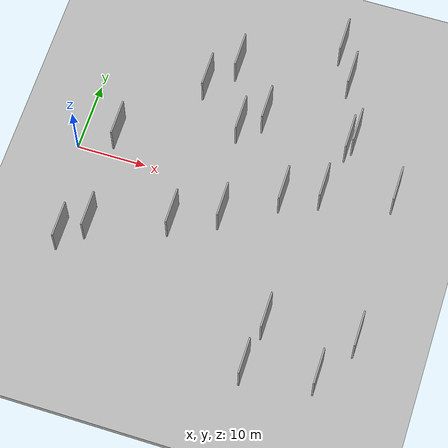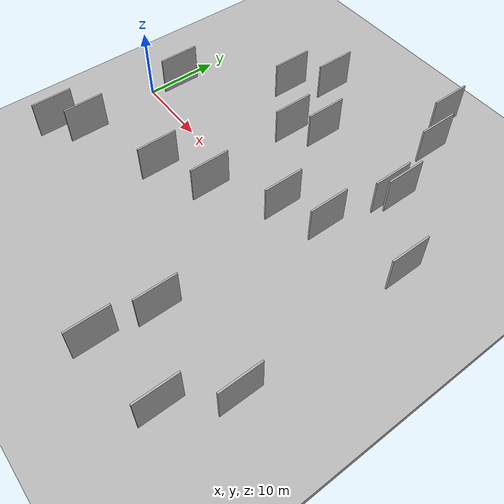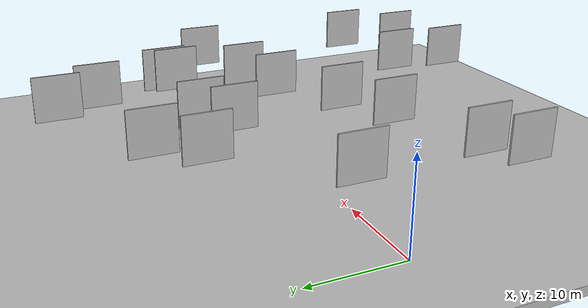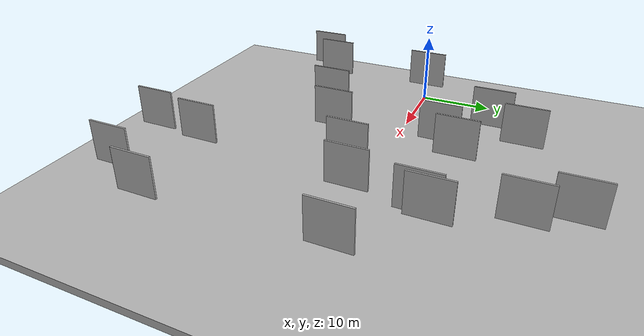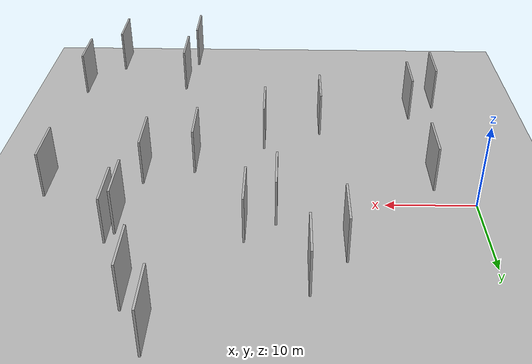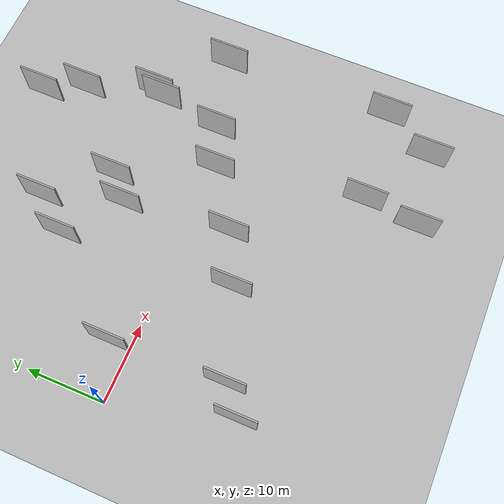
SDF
<?xml version="1.0" encoding="utf-8"?>

<sdf version="1.6">

   <world name="default">

      <gui fullscreen="0">

         <camera name="user_camera">

            <pose>-15 0 4.57585 0 0 0</pose>

            <view_controller>orbit</view_controller>

         </camera>

      </gui>

      <scene>

         <sky>

           <clouds>

             <speed>12</speed>

           </clouds>

         </sky>

         <ambient>0.4 0.4 0.4 1</ambient>

         <background>0.7 0.7 0.7 1</background>

         <shadows>1</shadows>

      </scene>

      <gravity>0 0 -9.8066</gravity>

      <magnetic_field>6e-06 2.3e-05 -4.2e-05</magnetic_field>

      <physics default="0" name="default_physics" type="ode">

         <ode>

            <solver>

               <type>quick</type>

               <iters>10</iters>

               <sor>1.0</sor>

               <use_dynamic_moi_rescaling>0</use_dynamic_moi_rescaling>

            </solver>

            <constraints>

               <cfm>0</cfm>

               <erp>0.2</erp>

               <contact_max_correcting_vel>100</contact_max_correcting_vel>

               <contact_surface_layer>0.001</contact_surface_layer>

            </constraints>

         </ode>

         <max_step_size>0.004</max_step_size>

         <real_time_factor>1</real_time_factor>

         <real_time_update_rate>250</real_time_update_rate>

      </physics>

      <light name="sun" type="directional">

         <cast_shadows>1</cast_shadows>

         <pose>0 0 10 0 0 0</pose>

         <diffuse>0.8 0.8 0.8 1</diffuse>

         <specular>0.2 0.2 0.2 1</specular>

         <attenuation>

            <range>1000</range>

            <constant>0.9</constant>

            <linear>0.01</linear>

            <quadratic>0.001</quadratic>

         </attenuation>

         <direction>-0.5 0.1 -0.9</direction>

      </light>

      <include>

         <name>ground_plane_1</name>

         <uri>model://HANNAS_ground_plane</uri>

         <pose>0 0 0  0 0 0</pose>

      </include>

      <include>

         <name>ground_plane_2</name>

         <uri>model://HANNAS_ground_plane</uri>

         <pose>100 0 0  0 0 0</pose>

      </include>

      <model name="HANNAS_wall_1">

         <static>1</static>

         <pose frame="">5.9303 1.4692 5.0 0.000000 0.000000 1.570796</pose>

         <link name="link">

            <pose frame="">0 0 2.50 0 0 0</pose>

            <collision name="collision">

               <geometry>

                  <box>

                     <size>5.00 0.2 5.00</size>

                  </box>

               </geometry>

               <max_contacts>10</max_contacts>

               <surface>

                  <contact>

                     <ode/>

                  </contact>

                  <bounce/>

                  <friction>

                     <torsional>

                        <ode/>

                     </torsional>

                     <ode/>

                  </friction>

               </surface>

            </collision>

            <visual name="visual">

               <cast_shadows>0</cast_shadows>

               <geometry>

                  <box>

                     <size>5.00 0.2 5.00</size>

                  </box>

               </geometry>

               <material>

                  <script>

                     <uri>model://HANNAS_wall/materials/scripts</uri>

                     <uri>model://HANNAS_wall/materials/textures</uri>

                     <name>vrc/HANNAS_wall</name>

                  </script>

               </material>

            </visual>

            <self_collide>0</self_collide>

            <enable_wind>0</enable_wind>

            <kinematic>0</kinematic>

         </link>

      </model>

      <model name="HANNAS_wall_2">

         <static>1</static>

         <pose frame="">17.1386 -8.8422 5.0 0.000000 0.000000 1.570796</pose>

         <link name="link">

            <pose frame="">0 0 2.50 0 0 0</pose>

            <collision name="collision">

               <geometry>

                  <box>

                     <size>5.00 0.2 5.00</size>

                  </box>

               </geometry>

               <max_contacts>10</max_contacts>

               <surface>

                  <contact>

                     <ode/>

                  </contact>

                  <bounce/>

                  <friction>

                     <torsional>

                        <ode/>

                     </torsional>

                     <ode/>

                  </friction>

               </surface>

            </collision>

            <visual name="visual">

               <cast_shadows>0</cast_shadows>

               <geometry>

                  <box>

                     <size>5.00 0.2 5.00</size>

                  </box>

               </geometry>

               <material>

                  <script>

                     <uri>model://HANNAS_wall/materials/scripts</uri>

                     <uri>model://HANNAS_wall/materials/textures</uri>

                     <name>vrc/HANNAS_wall</name>

                  </script>

               </material>

            </visual>

            <self_collide>0</self_collide>

            <enable_wind>0</enable_wind>

            <kinematic>0</kinematic>

         </link>

      </model>

      <model name="HANNAS_wall_3">

         <static>1</static>

         <pose frame="">34.4336 18.6570 5.0 0.000000 0.000000 1.570796</pose>

         <link name="link">

            <pose frame="">0 0 2.50 0 0 0</pose>

            <collision name="collision">

               <geometry>

                  <box>

                     <size>5.00 0.2 5.00</size>

                  </box>

               </geometry>

               <max_contacts>10</max_contacts>

               <surface>

                  <contact>

                     <ode/>

                  </contact>

                  <bounce/>

                  <friction>

                     <torsional>

                        <ode/>

                     </torsional>

                     <ode/>

                  </friction>

               </surface>

            </collision>

            <visual name="visual">

               <cast_shadows>0</cast_shadows>

               <geometry>

                  <box>

                     <size>5.00 0.2 5.00</size>

                  </box>

               </geometry>

               <material>

                  <script>

                     <uri>model://HANNAS_wall/materials/scripts</uri>

                     <uri>model://HANNAS_wall/materials/textures</uri>

                     <name>vrc/HANNAS_wall</name>

                  </script>

               </material>

            </visual>

            <self_collide>0</self_collide>

            <enable_wind>0</enable_wind>

            <kinematic>0</kinematic>

         </link>

      </model>

      <model name="HANNAS_wall_4">

         <static>1</static>

         <pose frame="">33.4336 -19.1436 5.0 0.000000 0.000000 1.570796</pose>

         <link name="link">

            <pose frame="">0 0 2.50 0 0 0</pose>

            <collision name="collision">

               <geometry>

                  <box>

                     <size>5.00 0.2 5.00</size>

                  </box>

               </geometry>

               <max_contacts>10</max_contacts>

               <surface>

                  <contact>

                     <ode/>

                  </contact>

                  <bounce/>

                  <friction>

                     <torsional>

                        <ode/>

                     </torsional>

                     <ode/>

                  </friction>

               </surface>

            </collision>

            <visual name="visual">

               <cast_shadows>0</cast_shadows>

               <geometry>

                  <box>

                     <size>5.00 0.2 5.00</size>

                  </box>

               </geometry>

               <material>

                  <script>

                     <uri>model://HANNAS_wall/materials/scripts</uri>

                     <uri>model://HANNAS_wall/materials/textures</uri>

                     <name>vrc/HANNAS_wall</name>

                  </script>

               </material>

            </visual>

            <self_collide>0</self_collide>

            <enable_wind>0</enable_wind>

            <kinematic>0</kinematic>

         </link>

      </model>

      <model name="HANNAS_wall_5">

         <static>1</static>

         <pose frame="">45.0033 3.3487 5.0 0.000000 0.000000 1.570796</pose>

         <link name="link">

            <pose frame="">0 0 2.50 0 0 0</pose>

            <collision name="collision">

               <geometry>

                  <box>

                     <size>5.00 0.2 5.00</size>

                  </box>

               </geometry>

               <max_contacts>10</max_contacts>

               <surface>

                  <contact>

                     <ode/>

                  </contact>

                  <bounce/>

                  <friction>

                     <torsional>

                        <ode/>

                     </torsional>

                     <ode/>

                  </friction>

               </surface>

            </collision>

            <visual name="visual">

               <cast_shadows>0</cast_shadows>

               <geometry>

                  <box>

                     <size>5.00 0.2 5.00</size>

                  </box>

               </geometry>

               <material>

                  <script>

                     <uri>model://HANNAS_wall/materials/scripts</uri>

                     <uri>model://HANNAS_wall/materials/textures</uri>

                     <name>vrc/HANNAS_wall</name>

                  </script>

               </material>

            </visual>

            <self_collide>0</self_collide>

            <enable_wind>0</enable_wind>

            <kinematic>0</kinematic>

         </link>

      </model>

      <model name="HANNAS_wall_6">

         <static>1</static>

         <pose frame="">23.3025 -5.8635 5.0 0.000000 0.000000 1.570796</pose>

         <link name="link">

            <pose frame="">0 0 2.50 0 0 0</pose>

            <collision name="collision">

               <geometry>

                  <box>

                     <size>5.00 0.2 5.00</size>

                  </box>

               </geometry>

               <max_contacts>10</max_contacts>

               <surface>

                  <contact>

                     <ode/>

                  </contact>

                  <bounce/>

                  <friction>

                     <torsional>

                        <ode/>

                     </torsional>

                     <ode/>

                  </friction>

               </surface>

            </collision>

            <visual name="visual">

               <cast_shadows>0</cast_shadows>

               <geometry>

                  <box>

                     <size>5.00 0.2 5.00</size>

                  </box>

               </geometry>

               <material>

                  <script>

                     <uri>model://HANNAS_wall/materials/scripts</uri>

                     <uri>model://HANNAS_wall/materials/textures</uri>

                     <name>vrc/HANNAS_wall</name>

                  </script>

               </material>

            </visual>

            <self_collide>0</self_collide>

            <enable_wind>0</enable_wind>

            <kinematic>0</kinematic>

         </link>

      </model>

      <model name="HANNAS_wall_7">

         <static>1</static>

         <pose frame="">6.6273 -12.5231 5.0 0.000000 0.000000 1.570796</pose>

         <link name="link">

            <pose frame="">0 0 2.50 0 0 0</pose>

            <collision name="collision">

               <geometry>

                  <box>

                     <size>5.00 0.2 5.00</size>

                  </box>

               </geometry>

               <max_contacts>10</max_contacts>

               <surface>

                  <contact>

                     <ode/>

                  </contact>

                  <bounce/>

                  <friction>

                     <torsional>

                        <ode/>

                     </torsional>

                     <ode/>

                  </friction>

               </surface>

            </collision>

            <visual name="visual">

               <cast_shadows>0</cast_shadows>

               <geometry>

                  <box>

                     <size>5.00 0.2 5.00</size>

                  </box>

               </geometry>

               <material>

                  <script>

                     <uri>model://HANNAS_wall/materials/scripts</uri>

                     <uri>model://HANNAS_wall/materials/textures</uri>

                     <name>vrc/HANNAS_wall</name>

                  </script>

               </material>

            </visual>

            <self_collide>0</self_collide>

            <enable_wind>0</enable_wind>

            <kinematic>0</kinematic>

         </link>

      </model>

      <model name="HANNAS_wall_8">

         <static>1</static>

         <pose frame="">18.7798 16.6416 5.0 0.000000 0.000000 1.570796</pose>

         <link name="link">

            <pose frame="">0 0 2.50 0 0 0</pose>

            <collision name="collision">

               <geometry>

                  <box>

                     <size>5.00 0.2 5.00</size>

                  </box>

               </geometry>

               <max_contacts>10</max_contacts>

               <surface>

                  <contact>

                     <ode/>

                  </contact>

                  <bounce/>

                  <friction>

                     <torsional>

                        <ode/>

                     </torsional>

                     <ode/>

                  </friction>

               </surface>

            </collision>

            <visual name="visual">

               <cast_shadows>0</cast_shadows>

               <geometry>

                  <box>

                     <size>5.00 0.2 5.00</size>

                  </box>

               </geometry>

               <material>

                  <script>

                     <uri>model://HANNAS_wall/materials/scripts</uri>

                     <uri>model://HANNAS_wall/materials/textures</uri>

                     <name>vrc/HANNAS_wall</name>

                  </script>

               </material>

            </visual>

            <self_collide>0</self_collide>

            <enable_wind>0</enable_wind>

            <kinematic>0</kinematic>

         </link>

      </model>

      <model name="HANNAS_wall_9">

         <static>1</static>

         <pose frame="">3.5085 -15.1374 5.0 0.000000 0.000000 1.570796</pose>

         <link name="link">

            <pose frame="">0 0 2.50 0 0 0</pose>

            <collision name="collision">

               <geometry>

                  <box>

                     <size>5.00 0.2 5.00</size>

                  </box>

               </geometry>

               <max_contacts>10</max_contacts>

               <surface>

                  <contact>

                     <ode/>

                  </contact>

                  <bounce/>

                  <friction>

                     <torsional>

                        <ode/>

                     </torsional>

                     <ode/>

                  </friction>

               </surface>

            </collision>

            <visual name="visual">

               <cast_shadows>0</cast_shadows>

               <geometry>

                  <box>

                     <size>5.00 0.2 5.00</size>

                  </box>

               </geometry>

               <material>

                  <script>

                     <uri>model://HANNAS_wall/materials/scripts</uri>

                     <uri>model://HANNAS_wall/materials/textures</uri>

                     <name>vrc/HANNAS_wall</name>

                  </script>

               </material>

            </visual>

            <self_collide>0</self_collide>

            <enable_wind>0</enable_wind>

            <kinematic>0</kinematic>

         </link>

      </model>

      <model name="HANNAS_wall_10">

         <static>1</static>

         <pose frame="">32.5442 -25.9459 5.0 0.000000 0.000000 1.570796</pose>

         <link name="link">

            <pose frame="">0 0 2.50 0 0 0</pose>

            <collision name="collision">

               <geometry>

                  <box>

                     <size>5.00 0.2 5.00</size>

                  </box>

               </geometry>

               <max_contacts>10</max_contacts>

               <surface>

                  <contact>

                     <ode/>

                  </contact>

                  <bounce/>

                  <friction>

                     <torsional>

                        <ode/>

                     </torsional>

                     <ode/>

                  </friction>

               </surface>

            </collision>

            <visual name="visual">

               <cast_shadows>0</cast_shadows>

               <geometry>

                  <box>

                     <size>5.00 0.2 5.00</size>

                  </box>

               </geometry>

               <material>

                  <script>

                     <uri>model://HANNAS_wall/materials/scripts</uri>

                     <uri>model://HANNAS_wall/materials/textures</uri>

                     <name>vrc/HANNAS_wall</name>

                  </script>

               </material>

            </visual>

            <self_collide>0</self_collide>

            <enable_wind>0</enable_wind>

            <kinematic>0</kinematic>

         </link>

      </model>

      <model name="HANNAS_wall_11">

         <static>1</static>

         <pose frame="">36.8130 9.0150 5.0 0.000000 0.000000 1.570796</pose>

         <link name="link">

            <pose frame="">0 0 2.50 0 0 0</pose>

            <collision name="collision">

               <geometry>

                  <box>

                     <size>5.00 0.2 5.00</size>

                  </box>

               </geometry>

               <max_contacts>10</max_contacts>

               <surface>

                  <contact>

                     <ode/>

                  </contact>

                  <bounce/>

                  <friction>

                     <torsional>

                        <ode/>

                     </torsional>

                     <ode/>

                  </friction>

               </surface>

            </collision>

            <visual name="visual">

               <cast_shadows>0</cast_shadows>

               <geometry>

                  <box>

                     <size>5.00 0.2 5.00</size>

                  </box>

               </geometry>

               <material>

                  <script>

                     <uri>model://HANNAS_wall/materials/scripts</uri>

                     <uri>model://HANNAS_wall/materials/textures</uri>

                     <name>vrc/HANNAS_wall</name>

                  </script>

               </material>

            </visual>

            <self_collide>0</self_collide>

            <enable_wind>0</enable_wind>

            <kinematic>0</kinematic>

         </link>

      </model>

      <model name="HANNAS_wall_12">

         <static>1</static>

         <pose frame="">35.4692 0.9886 5.0 0.000000 0.000000 1.570796</pose>

         <link name="link">

            <pose frame="">0 0 2.50 0 0 0</pose>

            <collision name="collision">

               <geometry>

                  <box>

                     <size>5.00 0.2 5.00</size>

                  </box>

               </geometry>

               <max_contacts>10</max_contacts>

               <surface>

                  <contact>

                     <ode/>

                  </contact>

                  <bounce/>

                  <friction>

                     <torsional>

                        <ode/>

                     </torsional>

                     <ode/>

                  </friction>

               </surface>

            </collision>

            <visual name="visual">

               <cast_shadows>0</cast_shadows>

               <geometry>

                  <box>

                     <size>5.00 0.2 5.00</size>

                  </box>

               </geometry>

               <material>

                  <script>

                     <uri>model://HANNAS_wall/materials/scripts</uri>

                     <uri>model://HANNAS_wall/materials/textures</uri>

                     <name>vrc/HANNAS_wall</name>

                  </script>

               </material>

            </visual>

            <self_collide>0</self_collide>

            <enable_wind>0</enable_wind>

            <kinematic>0</kinematic>

         </link>

      </model>

      <model name="HANNAS_wall_13">

         <static>1</static>

         <pose frame="">45.5844 -18.0358 5.0 0.000000 0.000000 1.570796</pose>

         <link name="link">

            <pose frame="">0 0 2.50 0 0 0</pose>

            <collision name="collision">

               <geometry>

                  <box>

                     <size>5.00 0.2 5.00</size>

                  </box>

               </geometry>

               <max_contacts>10</max_contacts>

               <surface>

                  <contact>

                     <ode/>

                  </contact>

                  <bounce/>

                  <friction>

                     <torsional>

                        <ode/>

                     </torsional>

                     <ode/>

                  </friction>

               </surface>

            </collision>

            <visual name="visual">

               <cast_shadows>0</cast_shadows>

               <geometry>

                  <box>

                     <size>5.00 0.2 5.00</size>

                  </box>

               </geometry>

               <material>

                  <script>

                     <uri>model://HANNAS_wall/materials/scripts</uri>

                     <uri>model://HANNAS_wall/materials/textures</uri>

                     <name>vrc/HANNAS_wall</name>

                  </script>

               </material>

            </visual>

            <self_collide>0</self_collide>

            <enable_wind>0</enable_wind>

            <kinematic>0</kinematic>

         </link>

      </model>

      <model name="HANNAS_wall_14">

         <static>1</static>

         <pose frame="">21.7921 7.3128 5.0 0.000000 0.000000 1.570796</pose>

         <link name="link">

            <pose frame="">0 0 2.50 0 0 0</pose>

            <collision name="collision">

               <geometry>

                  <box>

                     <size>5.00 0.2 5.00</size>

                  </box>

               </geometry>

               <max_contacts>10</max_contacts>

               <surface>

                  <contact>

                     <ode/>

                  </contact>

                  <bounce/>

                  <friction>

                     <torsional>

                        <ode/>

                     </torsional>

                     <ode/>

                  </friction>

               </surface>

            </collision>

            <visual name="visual">

               <cast_shadows>0</cast_shadows>

               <geometry>

                  <box>

                     <size>5.00 0.2 5.00</size>

                  </box>

               </geometry>

               <material>

                  <script>

                     <uri>model://HANNAS_wall/materials/scripts</uri>

                     <uri>model://HANNAS_wall/materials/textures</uri>

                     <name>vrc/HANNAS_wall</name>

                  </script>

               </material>

            </visual>

            <self_collide>0</self_collide>

            <enable_wind>0</enable_wind>

            <kinematic>0</kinematic>

         </link>

      </model>

      <model name="HANNAS_wall_15">

         <static>1</static>

         <pose frame="">31.9654 23.3799 5.0 0.000000 0.000000 1.570796</pose>

         <link name="link">

            <pose frame="">0 0 2.50 0 0 0</pose>

            <collision name="collision">

               <geometry>

                  <box>

                     <size>5.00 0.2 5.00</size>

                  </box>

               </geometry>

               <max_contacts>10</max_contacts>

               <surface>

                  <contact>

                     <ode/>

                  </contact>

                  <bounce/>

                  <friction>

                     <torsional>

                        <ode/>

                     </torsional>

                     <ode/>

                  </friction>

               </surface>

            </collision>

            <visual name="visual">

               <cast_shadows>0</cast_shadows>

               <geometry>

                  <box>

                     <size>5.00 0.2 5.00</size>

                  </box>

               </geometry>

               <material>

                  <script>

                     <uri>model://HANNAS_wall/materials/scripts</uri>

                     <uri>model://HANNAS_wall/materials/textures</uri>

                     <name>vrc/HANNAS_wall</name>

                  </script>

               </material>

            </visual>

            <self_collide>0</self_collide>

            <enable_wind>0</enable_wind>

            <kinematic>0</kinematic>

         </link>

      </model>

      <model name="HANNAS_wall_16">

         <static>1</static>

         <pose frame="">42.0269 -24.4260 5.0 0.000000 0.000000 1.570796</pose>

         <link name="link">

            <pose frame="">0 0 2.50 0 0 0</pose>

            <collision name="collision">

               <geometry>

                  <box>

                     <size>5.00 0.2 5.00</size>

                  </box>

               </geometry>

               <max_contacts>10</max_contacts>

               <surface>

                  <contact>

                     <ode/>

                  </contact>

                  <bounce/>

                  <friction>

                     <torsional>

                        <ode/>

                     </torsional>

                     <ode/>

                  </friction>

               </surface>

            </collision>

            <visual name="visual">

               <cast_shadows>0</cast_shadows>

               <geometry>

                  <box>

                     <size>5.00 0.2 5.00</size>

                  </box>

               </geometry>

               <material>

                  <script>

                     <uri>model://HANNAS_wall/materials/scripts</uri>

                     <uri>model://HANNAS_wall/materials/textures</uri>

                     <name>vrc/HANNAS_wall</name>

                  </script>

               </material>

            </visual>

            <self_collide>0</self_collide>

            <enable_wind>0</enable_wind>

            <kinematic>0</kinematic>

         </link>

      </model>

      <model name="HANNAS_wall_17">

         <static>1</static>

         <pose frame="">30.4009 -1.0589 5.0 0.000000 0.000000 1.570796</pose>

         <link name="link">

            <pose frame="">0 0 2.50 0 0 0</pose>

            <collision name="collision">

               <geometry>

                  <box>

                     <size>5.00 0.2 5.00</size>

                  </box>

               </geometry>

               <max_contacts>10</max_contacts>

               <surface>

                  <contact>

                     <ode/>

                  </contact>

                  <bounce/>

                  <friction>

                     <torsional>

                        <ode/>

                     </torsional>

                     <ode/>

                  </friction>

               </surface>

            </collision>

            <visual name="visual">

               <cast_shadows>0</cast_shadows>

               <geometry>

                  <box>

                     <size>5.00 0.2 5.00</size>

                  </box>

               </geometry>

               <material>

                  <script>

                     <uri>model://HANNAS_wall/materials/scripts</uri>

                     <uri>model://HANNAS_wall/materials/textures</uri>

                     <name>vrc/HANNAS_wall</name>

                  </script>

               </material>

            </visual>

            <self_collide>0</self_collide>

            <enable_wind>0</enable_wind>

            <kinematic>0</kinematic>

         </link>

      </model>

      <model name="HANNAS_wall_18">

         <static>1</static>

         <pose frame="">15.3629 12.4063 5.0 0.000000 0.000000 1.570796</pose>

         <link name="link">

            <pose frame="">0 0 2.50 0 0 0</pose>

            <collision name="collision">

               <geometry>

                  <box>

                     <size>5.00 0.2 5.00</size>

                  </box>

               </geometry>

               <max_contacts>10</max_contacts>

               <surface>

                  <contact>

                     <ode/>

                  </contact>

                  <bounce/>

                  <friction>

                     <torsional>

                        <ode/>

                     </torsional>

                     <ode/>

                  </friction>

               </surface>

            </collision>

            <visual name="visual">

               <cast_shadows>0</cast_shadows>

               <geometry>

                  <box>

                     <size>5.00 0.2 5.00</size>

                  </box>

               </geometry>

               <material>

                  <script>

                     <uri>model://HANNAS_wall/materials/scripts</uri>

                     <uri>model://HANNAS_wall/materials/textures</uri>

                     <name>vrc/HANNAS_wall</name>

                  </script>

               </material>

            </visual>

            <self_collide>0</self_collide>

            <enable_wind>0</enable_wind>

            <kinematic>0</kinematic>

         </link>

      </model>

      <model name="HANNAS_wall_19">

         <static>1</static>

         <pose frame="">24.7102 9.9286 5.0 0.000000 0.000000 1.570796</pose>

         <link name="link">

            <pose frame="">0 0 2.50 0 0 0</pose>

            <collision name="collision">

               <geometry>

                  <box>

                     <size>5.00 0.2 5.00</size>

                  </box>

               </geometry>

               <max_contacts>10</max_contacts>

               <surface>

                  <contact>

                     <ode/>

                  </contact>

                  <bounce/>

                  <friction>

                     <torsional>

                        <ode/>

                     </torsional>

                     <ode/>

                  </friction>

               </surface>

            </collision>

            <visual name="visual">

               <cast_shadows>0</cast_shadows>

               <geometry>

                  <box>

                     <size>5.00 0.2 5.00</size>

                  </box>

               </geometry>

               <material>

                  <script>

                     <uri>model://HANNAS_wall/materials/scripts</uri>

                     <uri>model://HANNAS_wall/materials/textures</uri>

                     <name>vrc/HANNAS_wall</name>

                  </script>

               </material>

            </visual>

            <self_collide>0</self_collide>

            <enable_wind>0</enable_wind>

            <kinematic>0</kinematic>

         </link>

      </model>

      <model name="HANNAS_wall_20">

         <static>1</static>

         <pose frame="">37.5027 10.2665 5.0 0.000000 0.000000 1.570796</pose>

         <link name="link">

            <pose frame="">0 0 2.50 0 0 0</pose>

            <collision name="collision">

               <geometry>

                  <box>

                     <size>5.00 0.2 5.00</size>

                  </box>

               </geometry>

               <max_contacts>10</max_contacts>

               <surface>

                  <contact>

                     <ode/>

                  </contact>

                  <bounce/>

                  <friction>

                     <torsional>

                        <ode/>

                     </torsional>

                     <ode/>

                  </friction>

               </surface>

            </collision>

            <visual name="visual">

               <cast_shadows>0</cast_shadows>

               <geometry>

                  <box>

                     <size>5.00 0.2 5.00</size>

                  </box>

               </geometry>

               <material>

                  <script>

                     <uri>model://HANNAS_wall/materials/scripts</uri>

                     <uri>model://HANNAS_wall/materials/textures</uri>

                     <name>vrc/HANNAS_wall</name>

                  </script>

               </material>

            </visual>

            <self_collide>0</self_collide>

            <enable_wind>0</enable_wind>

            <kinematic>0</kinematic>

         </link>

      </model>

   </world>

</sdf>

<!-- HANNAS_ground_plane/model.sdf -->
<sdf version="1.4">
<model name="HANNAS_ground_plane">
  <static>true</static>
    <link name="link">
      <collision name="collision">
        <geometry>
          <plane>
            <normal>0 0 1</normal>
            <size>1000 1000</size>
          </plane>
        </geometry>
        <surface>
          <friction>
            <ode>
              <mu>100</mu>
              <mu2>50</mu2>
            </ode>
          </friction>
        </surface>
      </collision>
      <visual name="visual">
        <cast_shadows>false</cast_shadows>
        <geometry>
          <plane>
            <normal>0 0 1</normal>
            <size>1000 1000</size>
          </plane>
        </geometry>
        <material>
          <script>
            <uri>model://HANNAS_ground_plane/materials/scripts/HANNAS_ground_plane.material</uri>
	    <uri>model://HANNAS_ground_plane/materials/textures</uri>
            <name>HANNASGroundPlane/Image</name>
          </script>
        </material>
      </visual>
    </link>
  </model>
</sdf>
